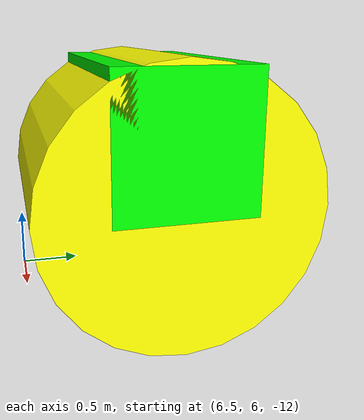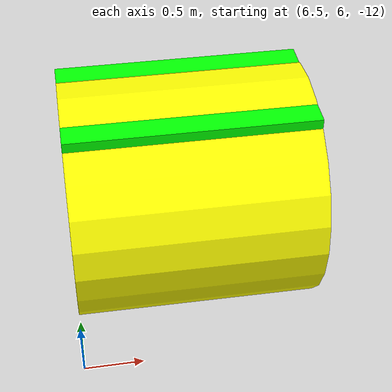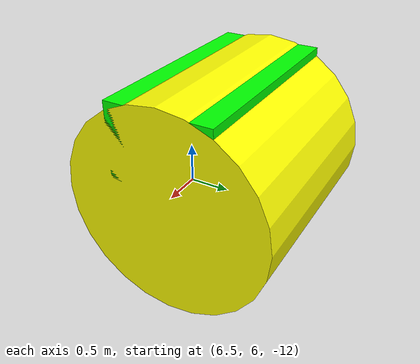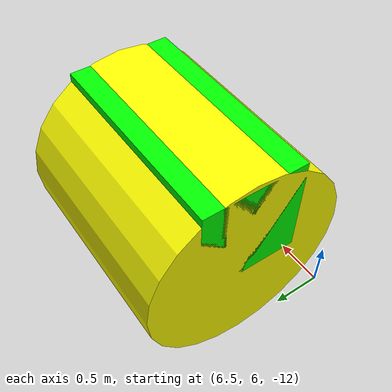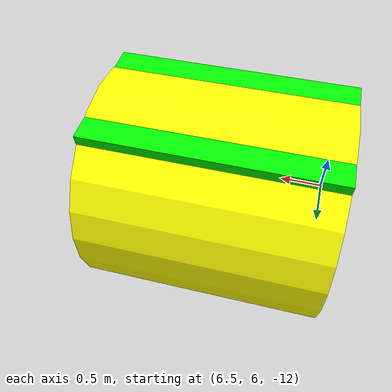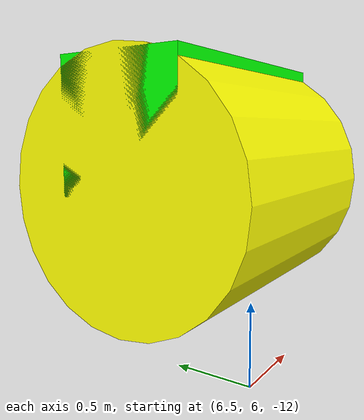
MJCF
<mujoco model="long bump (v0.1)">
    <compiler inertiafromgeom="true" angle="degree"/>
	<option	timestep="0.01" gravity="0 0 -9.81"/>

	<asset>
		<!--material name="MatGnd" specular="1" shininess=".3" reflectance="0" rgba="1 1 1 1" texture="PixelGround" /-->
		<!--material name="MatSpot" specular="1" shininess="0" reflectance="0.5" rgba="1 1 1 1"/-->
		<!--material name="MatInit" rgba=".8 0 0 1"/-->
	</asset>

	<default>
		<geom contype="1" conaffinity="1"/>
	</default>

    <worldbody>
    	<body name="long-bump1" pos="7 7 -10">
			<geom type="cylinder" pos=".5 0 -.95" size="1 1" axisangle="0 1 0 90" rgba="1 1 0 1"/>
			<geom type="box" pos=".5 0 -.5" size="1 .5 .5" rgba="0 1 0 1"/>
		</body>
    	<body name="long-bump2" pos="7 7 -10">
			<geom type="cylinder" pos=".5 0 -.95" size="1 1" axisangle="0 1 0 90" rgba="1 1 0 1"/>
			<geom type="box" pos=".5 0 -.5" size="1 .5 .5" rgba="0 1 0 1"/>
		</body>
    	<body name="long-bump3" pos="7 7 -10">
			<geom type="cylinder" pos=".5 0 -.95" size="1 1" axisangle="0 1 0 90" rgba="1 1 0 1"/>
			<geom type="box" pos=".5 0 -.5" size="1 .5 .5" rgba="0 1 0 1"/>
		</body>
    	<body name="long-bump4" pos="7 7 -10">
			<geom type="cylinder" pos=".5 0 -.95" size="1 1" axisangle="0 1 0 90" rgba="1 1 0 1"/>
			<geom type="box" pos=".5 0 -.5" size="1 .5 .5" rgba="0 1 0 1"/>
		</body>
    	<body name="long-bump5" pos="7 7 -10">
			<geom type="cylinder" pos=".5 0 -.95" size="1 1" axisangle="0 1 0 90" rgba="1 1 0 1"/>
			<geom type="box" pos=".5 0 -.5" size="1 .5 .5" rgba="0 1 0 1"/>
		</body>
    	<body name="long-bump6" pos="7 7 -10">
			<geom type="cylinder" pos=".5 0 -.95" size="1 1" axisangle="0 1 0 90" rgba="1 1 0 1"/>
			<geom type="box" pos=".5 0 -.5" size="1 .5 .5" rgba="0 1 0 1"/>
		</body>
    	<body name="long-bump7" pos="7 7 -10">
			<geom type="cylinder" pos=".5 0 -.95" size="1 1" axisangle="0 1 0 90" rgba="1 1 0 1"/>
			<geom type="box" pos=".5 0 -.5" size="1 .5 .5" rgba="0 1 0 1"/>
		</body>
    	<body name="long-bump8" pos="7 7 -10">
			<geom type="cylinder" pos=".5 0 -.95" size="1 1" axisangle="0 1 0 90" rgba="1 1 0 1"/>
			<geom type="box" pos=".5 0 -.5" size="1 .5 .5" rgba="0 1 0 1"/>
		</body>
    	<body name="long-bump9" pos="7 7 -10">
			<geom type="cylinder" pos=".5 0 -.95" size="1 1" axisangle="0 1 0 90" rgba="1 1 0 1"/>
			<geom type="box" pos=".5 0 -.5" size="1 .5 .5" rgba="0 1 0 1"/>
		</body>
    	<body name="long-bump10" pos="7 7 -10">
			<geom type="cylinder" pos=".5 0 -.95" size="1 1" axisangle="0 1 0 90" rgba="1 1 0 1"/>
			<geom type="box" pos=".5 0 -.5" size="1 .5 .5" rgba="0 1 0 1"/>
		</body>
	</worldbody>
</mujoco>
